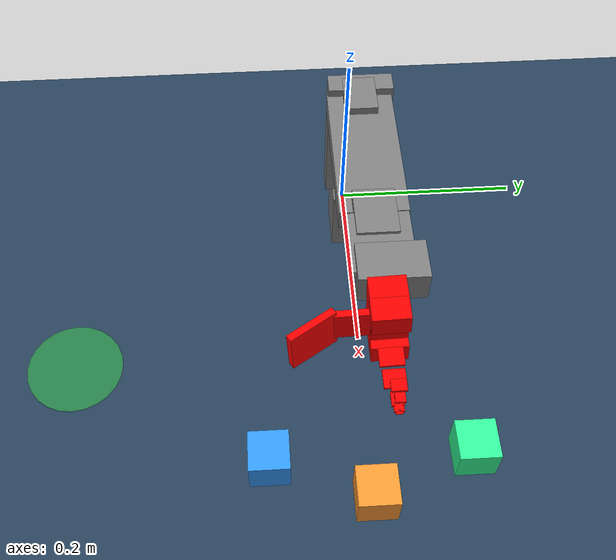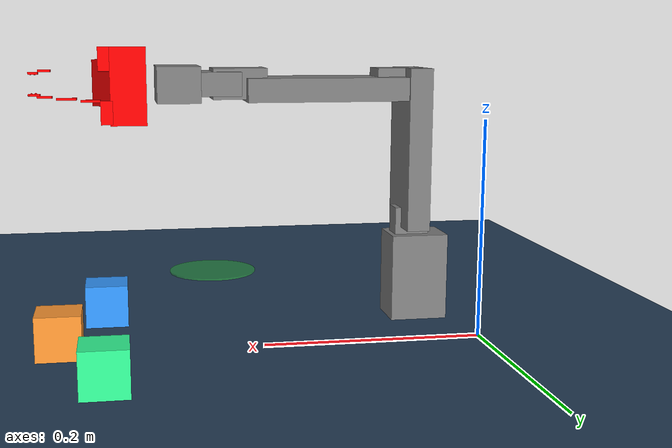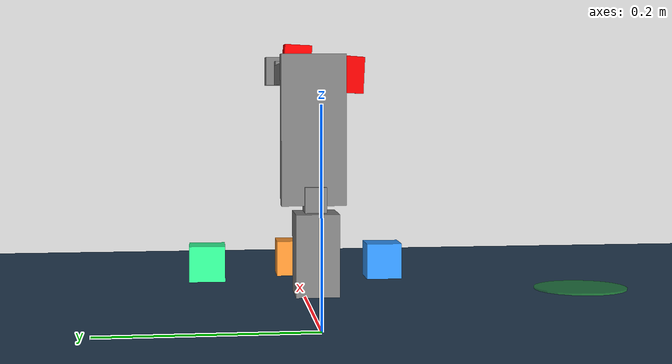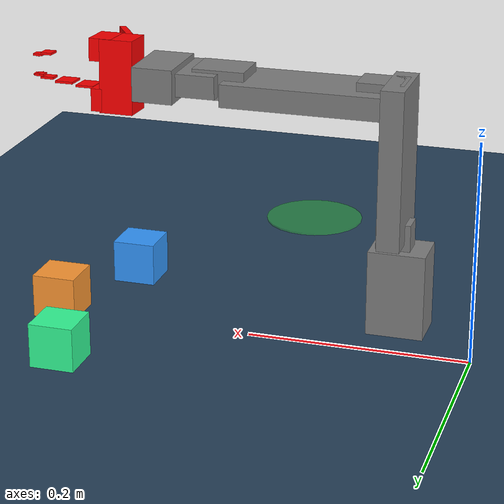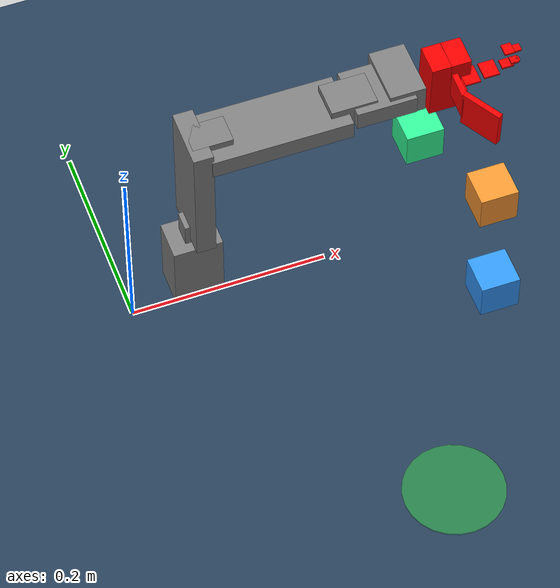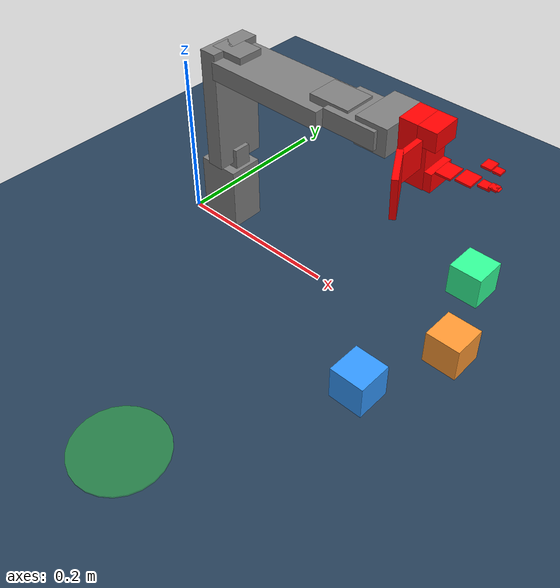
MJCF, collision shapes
<?xml version="1.0"?>
<mujoco model="so101_new_calib">
  <option integrator="implicitfast" timestep="0.002" cone="elliptic" iterations="10" ls_iterations="20" impratio="10"/>

  <compiler angle="radian" meshdir="assets" autolimits="true"/>

  <visual>
    <scale contactwidth="0.1" contactheight="0.05" forcewidth="0.02" framelength="0.75" framewidth="0.025" camera="0.2"/>
    <headlight diffuse="0.0 0.0 0.0" ambient="0.3 0.3 0.3" specular="0 0 0"/>
    <rgba haze="0.62 0.80 0.96 1"/>
    <quality shadowsize="8192" offsamples="8"/>
  </visual>

  <default>
    <geom condim="4"/>

    <default class="so101">
      <joint damping="1" frictionloss="0.1" armature="0.005"/>
      <position kp="50"/>
      <default class="visual">
        <geom type="mesh" contype="0" conaffinity="0" group="2"/>
      </default>
      <default class="collision">
        <geom group="3" condim="3"/>
      </default>
      <default class="collision_gripper">
        <geom group="3" condim="6" friction="1 5e-3 5e-4" solref="0.01 1" priority="1" rgba="1.0 0 0 1.0" mass="0"/>
      </default>
      <default class="collision_gripper_mesh">
        <geom group="4" condim="6" friction="1 5e-3 5e-4" solref="0.01 1" priority="1" rgba="1.0 0 0 1.0" mass="0"/>
      </default>
    </default>

    <default class="sts3215">
      <geom contype="0" conaffinity="0"/>
      <joint damping="0.60" frictionloss="0.052" armature="0.028"/>
      <position kp="998.22" kv="2.731" forcerange="-2.94 2.94"/>
    </default>

    <default class="backlash">
      <joint damping="0.01" frictionloss="0" armature="0.01" limited="true" range="-0.008726646259971648 0.008726646259971648"/>
    </default>
  </default>

  <worldbody>
    <light pos="1 1 3.5" dir="-0.227 -0.268 -0.936" directional="false" cutoff="25" exponent="1" diffuse="0.5 0.5 0.5"/>
    <light pos="0 0 3.5" dir="0 0 -1" directional="true" diffuse="0.6 0.6 0.6" castshadow="true"/>
    <geom name="floor" type="plane" size="0 0 0.01" pos="0 0 0" material="groundplane" condim="3" friction="0.5 0.005 0.0001"/>
    <body name="block1" pos="0.34 -0.10 0.02" childclass="so101">
      <joint type="free" name="block1:joint"/>
      <geom type="box" size="0.02 0.02 0.02" rgba="0.2 0.6 1.0 1" mass="0.02"/>
    </body>
    <body name="block2" pos="0.34 0.10 0.02" childclass="so101">
      <joint type="free" name="block2:joint"/>
      <geom type="box" size="0.02 0.02 0.02" rgba="0.2 1.0 0.6 1" mass="0.02"/>
    </body>
    <body name="block3" pos="0.38 0 0.02" childclass="so101">
      <joint type="free" name="block3:joint"/>
      <geom type="box" size="0.02 0.02 0.02" rgba="1.0 0.6 0.2 1" mass="0.02"/>
    </body>
    <body name="target" pos="0.22 -0.30 0.001">
      <geom name="target_disc" type="cylinder" size="0.05 0.001" rgba="0.2 1.0 0.2 0.35" contype="0" conaffinity="0"/>
    </body>
    <!-- Link base -->
    <body name="base" pos="0 0 0" quat="1 0 0 0" childclass="so101">
      <inertial pos="0.0137179 -5.19711e-05 0.0334843" mass="0.147" fullinertia="0.000114686 0.000136117 0.000130364 -4.59787e-07 4.97151e-06 9.75275e-08"/>
      <geom type="mesh" class="visual" pos="-0.00636471 -9.94414e-05 -0.0024" quat="0.5 0.5 0.5 0.5" mesh="base_motor_holder_so101_v1" material="base_motor_holder_so101_v1_material"/>
      <geom type="mesh" class="visual" pos="-0.00636471 -8.97657e-09 -0.0024" quat="0.5 0.5 0.5 0.5" mesh="base_so101_v2" material="base_so101_v2_material"/>
      <geom type="mesh" class="visual" pos="0.0263353 -8.97657e-09 0.0437" quat="1 -2.85511e-16 -9.64433e-17 6.12908e-16" mesh="sts3215_03a_v1" material="sts3215_03a_v1_material"/>
      <geom type="mesh" class="visual" pos="-0.0309827 -0.000199441 0.0474" quat="0.5 0.5 0.5 0.5" mesh="waveshare_mounting_plate_so101_v2" material="waveshare_mounting_plate_so101_v2_material"/>
      <site group="3" name="baseframe" pos="8.67362e-19 9.55596e-18 3.46945e-18" quat="1 -8.17396e-19 3.78392e-17 2.22045e-16"/>
      <!-- Link shoulder -->
      <body name="shoulder" pos="0.0388353 -8.97657e-09 0.0624" quat="3.56167e-16 1.22818e-15 -1 -4.14635e-16">
        <joint axis="0 0 1" name="shoulder_pan" type="hinge" range="-1.9198621771937616 1.9198621771937634" class="sts3215"/>
        <inertial pos="-0.0307604 -1.66727e-05 -0.0252713" mass="0.100006" fullinertia="8.3759e-05 8.10403e-05 2.39783e-05 7.55525e-08 -1.16342e-06 1.54663e-07"/>
        <geom type="mesh" class="visual" pos="-0.0303992 0.000422241 -0.0417" quat="0.5 0.5 0.5 -0.5" mesh="sts3215_03a_v1" material="sts3215_03a_v1_material"/>
        <geom type="box" class="collision" pos="-0.0303992 0.000422241 -0.0387" quat="0.5 0.5 0.5 -0.5" size="0.023 0.015 0.01"/>
        <geom type="mesh" class="visual" pos="-0.0675992 -0.000177759 0.0158499" quat="0.5 0.5 -0.5 0.5" mesh="motor_holder_so101_base_v1" material="motor_holder_so101_base_v1_material"/>
        <geom type="box" class="collision" pos="-0.025 0 0.0" quat="0.5 0.5 -0.5 0.5" size="0.038 0.025 0.02"/>
        <geom type="mesh" class="visual" pos="0.0122008 2.22413e-05 0.0464" quat="0.707107 -0.707107 -0 8.3163e-34" mesh="rotation_pitch_so101_v1" material="rotation_pitch_so101_v1_material"/>
        <!-- Link upper_arm -->
        <body name="upper_arm" pos="-0.0303992 -0.0182778 -0.0542" quat="0.5 -0.5 -0.5 -0.5">
          <joint axis="0 0 1" name="shoulder_lift" type="hinge" range="-1.7453292519943224 1.7453292519943366" class="sts3215"/>
          <inertial pos="-0.0898471 -0.00838224 0.0184089" mass="0.103" fullinertia="4.08002e-05 0.000147318 0.000142487 -1.97819e-05 -4.03016e-08 8.97326e-09"/>
          <geom type="mesh" class="visual" pos="-0.11257 -0.0155 0.0187" quat="4.56308e-16 -0.707107 0.707107 -1.37383e-16" mesh="sts3215_03a_v1" material="sts3215_03a_v1_material"/>
          <geom type="box" class="collision" pos="-0.06 0 0.02" quat="4.56308e-16 -0.707107 0.707107 -1.37383e-16" size="0.01 0.07 0.03"/>
          <geom type="mesh" class="visual" pos="-0.065085 0.012 0.0182" quat="0 1 0 0" mesh="upper_arm_so101_v1" material="upper_arm_so101_v1_material"/>
          <geom type="box" class="collision" pos="-0.12 -0.014 0.0182" quat="0 1 0 0" size="0.01 0.02 0.015"/>
          <!-- Link lower_arm -->
          <body name="lower_arm" pos="-0.11257 -0.028 1.73763e-16" quat="0.707107 -5.98613e-17 -2.58051e-17 0.707107">
            <joint axis="0 0 1" name="elbow_flex" type="hinge" range="-1.69 1.69" class="sts3215"/>
            <inertial pos="-0.0980701 0.00324376 0.0182831" mass="0.104" fullinertia="2.87438e-05 0.000159844 0.00014529 7.41152e-06 1.26409e-06 -4.90188e-08"/>
            <geom type="mesh" class="visual" pos="-0.0648499 -0.032 0.0182" quat="0 1 0 0" mesh="under_arm_so101_v1" material="under_arm_so101_v1_material"/>
            <geom type="box" class="collision" pos="-0.05 0 0.0182" quat="0 1 0 0" size="0.07 0.01 0.03"/>
            <geom type="mesh" class="visual" pos="-0.0648499 -0.032 0.018" quat="3.92687e-16 -1 -1.9186e-15 -6.38378e-16" mesh="motor_holder_so101_wrist_v1" material="motor_holder_so101_wrist_v1_material"/>
            <geom type="box" class="collision" pos="-0.125 0.005 0.018" quat="3.92687e-16 -1 -1.9186e-15 -6.38378e-16" size="0.023 0.013 0.018"/>
            <geom type="mesh" class="visual" pos="-0.1224 0.0052 0.0187" quat="7.21645e-16 1.56949e-15 1 -3.33067e-16" mesh="sts3215_03a_v1" material="sts3215_03a_v1_material"/>
            <!-- Link wrist -->
            <body name="wrist" pos="-0.1349 0.0052 3.62355e-17" quat="0.707107 9.58722e-16 -7.51313e-16 -0.707107">
              <joint axis="0 0 1" name="wrist_flex" type="hinge" range="-1.6580628494556928 1.6580627293335335" class="sts3215"/>
              <inertial pos="-0.000103312 -0.0386143 0.0281156" mass="0.079" fullinertia="3.68263e-05 2.5391e-05 2.1e-05 1.7893e-08 -5.28128e-08 3.6412e-06"/>
              <geom type="mesh" class="visual" pos="8.32667e-17 -0.0424 0.0306" quat="0.5 0.5 0.5 -0.5" mesh="sts3215_03a_no_horn_v1" material="sts3215_03a_no_horn_v1_material"/>
              <geom type="box" class="collision" pos="8.32667e-17 -0.0424 0.0256" quat="0.5 0.5 0.5 -0.5" size="0.029 0.015 0.018"/>
              <geom type="mesh" class="visual" pos="0 -0.028 0.0181" quat="0.5 -0.5 -0.5 -0.5" mesh="wrist_roll_pitch_so101_v2" material="wrist_roll_pitch_so101_v2_material"/>
              <geom type="box" class="collision" pos="0 -0.02 0.0191" quat="0.5 -0.5 -0.5 -0.5" size="0.027 0.01 0.03"/>
              <!-- Link gripper -->
              <body name="gripper" pos="5.55112e-17 -0.0611 0.0181" quat="0.0172091 -0.0172091 0.706897 0.706897">
                <joint axis="0 0 1" name="wrist_roll" type="hinge" range="-2.7438472969992493 2.841206309382605" class="sts3215"/>
                <inertial pos="0.000213627 0.000245138 -0.025187" mass="0.087" fullinertia="2.75087e-05 4.33657e-05 3.45059e-05 -3.35241e-07 -5.7352e-06 -5.17847e-08"/>
                <geom type="mesh" class="visual" pos="0.0077 0.0001 -0.0234" quat="0.707107 -0.707107 1.66015e-15 6.45094e-15" mesh="sts3215_03a_v1" material="sts3215_03a_v1_material"/>
                <geom type="mesh" class="visual" pos="8.32667e-17 -0.000218214 0.000949706" quat="0 1 0 0" mesh="wrist_roll_follower_so101_v1" material="wrist_roll_follower_so101_v1_material"/>
                <!-- Fixed jaw collision primitives -->
                <geom name="fixed_jaw_box1" class="collision_gripper" type="box" size="0.0325 0.015 0.015" pos="-0.0025 0 -0.022"/>
                <geom name="fixed_jaw_box2" class="collision_gripper" type="box" size="0.01 0.015 0.005" pos="-0.024 0 -0.04"/>
                <geom name="fixed_jaw_sph_tip1" class="collision_gripper" type="sphere" size="0.00075" pos="-0.0081 0 -0.101"/>
                <geom name="fixed_jaw_sph_tip2" class="collision_gripper" type="sphere" size="0.00075" pos="-0.0081 0.0035 -0.0975"/>
                <geom name="fixed_jaw_sph_tip3" class="collision_gripper" type="sphere" size="0.00075" pos="-0.0081 -0.0035 -0.0975"/>
                <geom name="fixed_jaw_box3" class="collision_gripper" type="capsule" size="0.0011 0.002" pos="-0.009 0 -0.103" euler="1.57 0 0"/>
                <geom name="fixed_jaw_box4" class="collision_gripper" type="box" size="0.001 0.004 0.004" pos="-0.009 0 -0.0982"/>
                <geom name="fixed_jaw_box5" class="collision_gripper" type="box" size="0.001 0.005 0.006" pos="-0.0108 0 -0.0905"/>
                <geom name="fixed_jaw_box6" class="collision_gripper" type="box" size="0.001 0.009 0.008" pos="-0.0125 0 -0.0727"/>
                <geom name="fixed_jaw_box7" class="collision_gripper" type="box" size="0.001 0.01 0.008" pos="-0.0143 0 -0.053"/>
                <site group="3" name="gripperframe" pos="0.012 -0.000218121 -0.0981274" quat="0 0 1 0"/>
                <body name="camera_mount">
                  <camera name="wrist" mode="fixed" pos="0 -0.055 -0.045" euler="0.57 0 3.141592653589793" fovy="75"/>
                  <geom name="camera_box1" class="collision_gripper" type="box" size="0.015 0.015 0.003" pos="0.0025 -0.03 -0.03"/>
                  <geom name="camera_box2" class="collision_gripper" type="box" size="0.021 0.021 0.003" pos="0.001 -0.06 -0.04" euler="0.55 0 0"/>
                </body>
                <!-- Link moving_jaw_so101_v1 -->
                <body name="moving_jaw_so101_v1" pos="0.0202 0.0188 -0.0234" quat="0.707107 0.707107 -1.85362e-08 1.85362e-08">
                  <joint axis="0 0 1" name="gripper" type="hinge" range="-0.17453297762778586 1.7453291995659765" class="sts3215"/>
                  <inertial pos="-0.00157495 -0.0300244 0.0192755" mass="0.012" fullinertia="6.61427e-06 1.89032e-06 5.28738e-06 -3.19807e-07 -5.90717e-09 -1.09945e-07"/>
                  <geom type="mesh" class="visual" pos="-5.55112e-17 -5.55112e-17 0.0189" quat="1 -0 3.00524e-16 -2.00834e-17" mesh="moving_jaw_so101_v1" material="moving_jaw_so101_v1_material"/>
                  <!-- Moving jaw collision primitives -->
                  <geom name="moving_jaw_box1" class="collision_gripper" type="box" size="0.01 0.01 0.015" pos="-0.0 -0.013 0.019"/>
                  <geom name="moving_jaw_sph_tip1" class="collision_gripper" type="sphere" size="0.00075" pos="-0.012 -0.078 0.0192"/>
                  <geom name="moving_jaw_sph_tip2" class="collision_gripper" type="sphere" size="0.00075" pos="-0.012 -0.0745 0.0225"/>
                  <geom name="moving_jaw_sph_tip3" class="collision_gripper" type="sphere" size="0.00075" pos="-0.012 -0.0745 0.0155"/>
                  <geom name="moving_jaw_box2" class="collision_gripper" type="box" size="0.001 0.004 0.004" pos="-0.0113 -0.076 0.01875"/>
                  <geom name="moving_jaw_box3" class="collision_gripper" type="box" size="0.001 0.005 0.006" pos="-0.0093 -0.067 0.01875"/>
                </body>
              </body>
            </body>
          </body>
        </body>
      </body>
    </body>
    <camera name="overview" mode="fixed" pos="0.25 0 0.80" xyaxes="0 1 0 -1 0 0" fovy="58"/>
  </worldbody>
  <asset>
    <texture type="skybox" builtin="gradient" rgb1="0.53 0.81 0.98" rgb2="0.20 0.35 0.55" width="512" height="3072"/>
    <texture type="2d" name="groundplane" builtin="checker" mark="edge" rgb1="0.2 0.3 0.4" rgb2="0.1 0.2 0.3" markrgb="0.8 0.8 0.8" width="300" height="300"/>
    <material name="groundplane" texture="groundplane" texuniform="true" texrepeat="5 5" reflectance="0.2"/>
    <mesh file="waveshare_mounting_plate_so101_v2.stl"/>
    <mesh file="sts3215_03a_v1.stl"/>
    <mesh file="motor_holder_so101_base_v1.stl"/>
    <mesh file="wrist_roll_follower_so101_v1.stl"/>
    <mesh file="moving_jaw_so101_v1.stl"/>
    <mesh file="base_motor_holder_so101_v1.stl"/>
    <mesh file="upper_arm_so101_v1.stl"/>
    <mesh file="wrist_roll_pitch_so101_v2.stl"/>
    <mesh file="under_arm_so101_v1.stl"/>
    <mesh file="rotation_pitch_so101_v1.stl"/>
    <mesh file="motor_holder_so101_wrist_v1.stl"/>
    <mesh file="sts3215_03a_no_horn_v1.stl"/>
    <mesh file="base_so101_v2.stl"/>
    <material name="base_motor_holder_so101_v1_material" rgba="1 0.82 0.12 1"/>
    <material name="base_so101_v2_material" rgba="1 0.82 0.12 1"/>
    <material name="sts3215_03a_v1_material" rgba="0.1 0.1 0.1 1"/>
    <material name="waveshare_mounting_plate_so101_v2_material" rgba="1 0.82 0.12 1"/>
    <material name="motor_holder_so101_base_v1_material" rgba="1 0.82 0.12 1"/>
    <material name="rotation_pitch_so101_v1_material" rgba="1 0.82 0.12 1"/>
    <material name="upper_arm_so101_v1_material" rgba="1 0.82 0.12 1"/>
    <material name="under_arm_so101_v1_material" rgba="1 0.82 0.12 1"/>
    <material name="motor_holder_so101_wrist_v1_material" rgba="1 0.82 0.12 1"/>
    <material name="sts3215_03a_no_horn_v1_material" rgba="0.1 0.1 0.1 1.0"/>
    <material name="wrist_roll_pitch_so101_v2_material" rgba="1 0.82 0.12 1"/>
    <material name="wrist_roll_follower_so101_v1_material" rgba="1 0.82 0.12 1"/>
    <material name="moving_jaw_so101_v1_material" rgba="1 0.82 0.12 1"/>
  </asset>
  <actuator>
    <position class="sts3215" name="shoulder_pan" joint="shoulder_pan" forcerange="-3.35 3.35" ctrlrange="-1.91986 1.91986"/>
    <position class="sts3215" name="shoulder_lift" joint="shoulder_lift" forcerange="-3.35 3.35" ctrlrange="-1.74533 1.74533"/>
    <position class="sts3215" name="elbow_flex" joint="elbow_flex" forcerange="-3.35 3.35" ctrlrange="-1.69 1.69"/>
    <position class="sts3215" name="wrist_flex" joint="wrist_flex" forcerange="-3.35 3.35" ctrlrange="-1.65806 1.65806"/>
    <position class="sts3215" name="wrist_roll" joint="wrist_roll" forcerange="-3.35 3.35" ctrlrange="-2.74385 2.84121"/>
    <position class="sts3215" name="gripper" joint="gripper" forcerange="-3.35 3.35" ctrlrange="-0.17453 1.74533"/>
  </actuator>
</mujoco>
